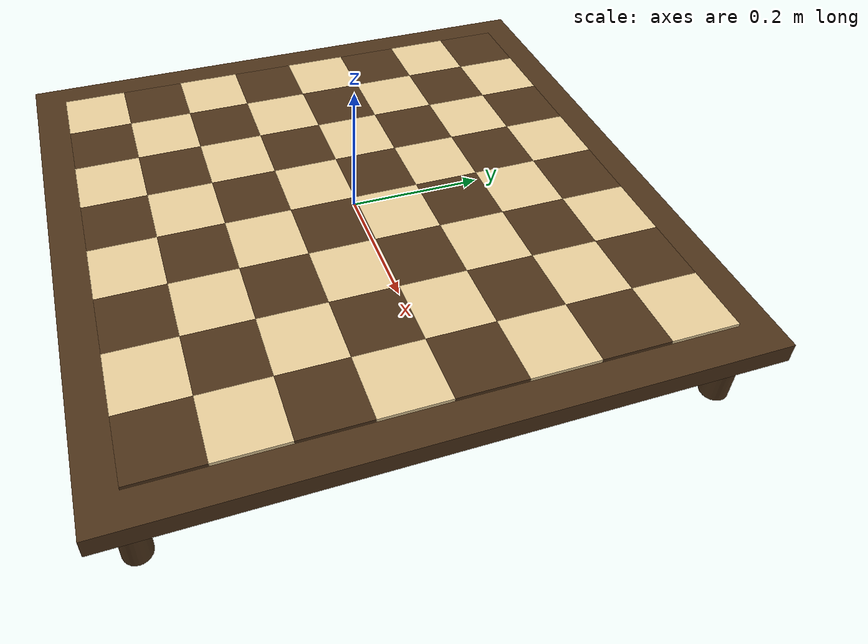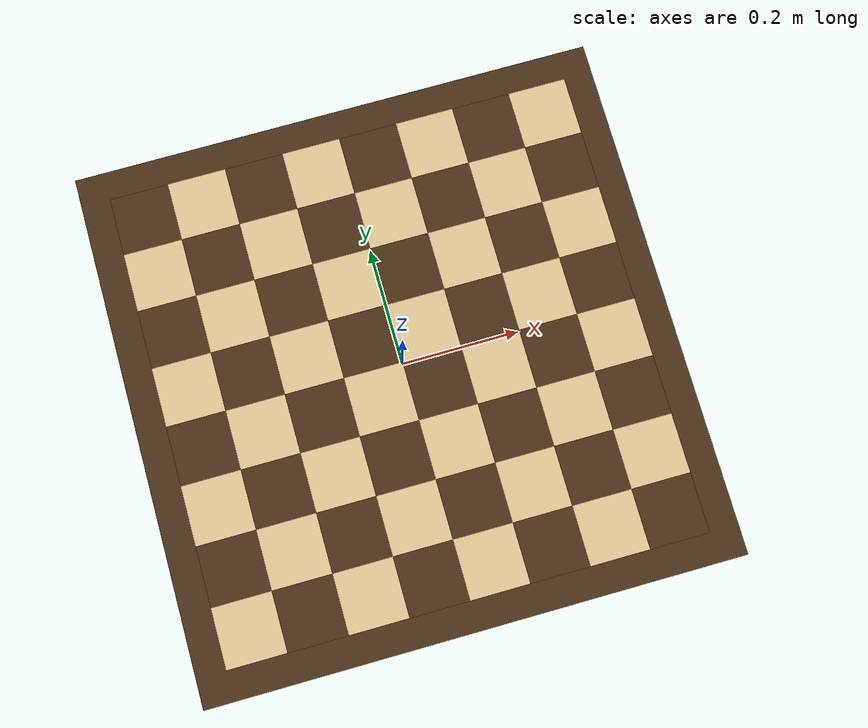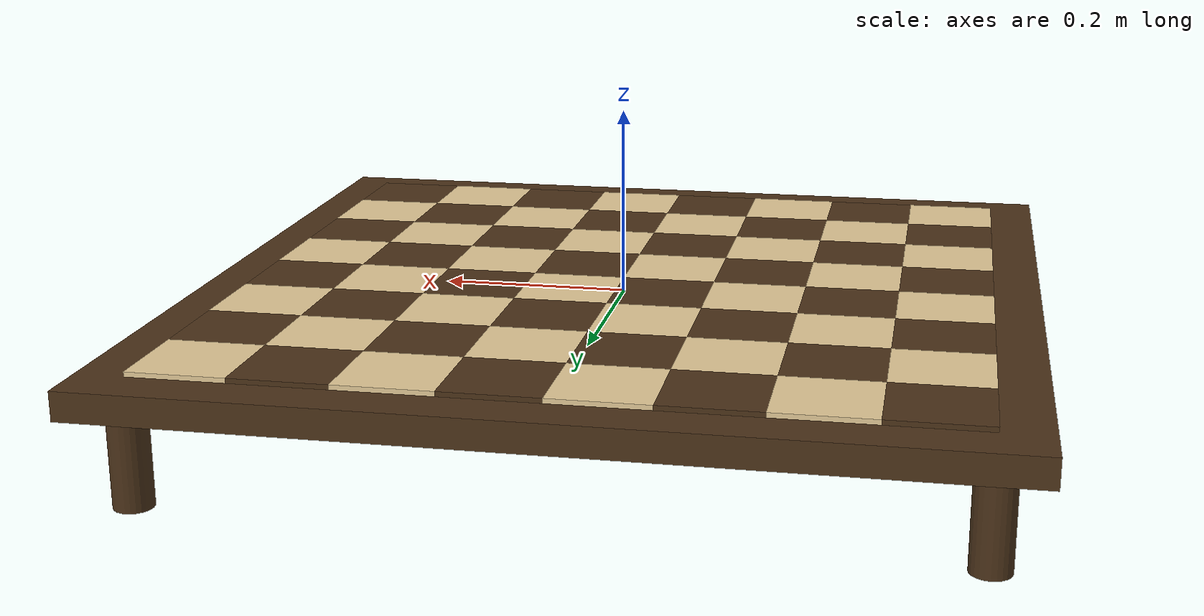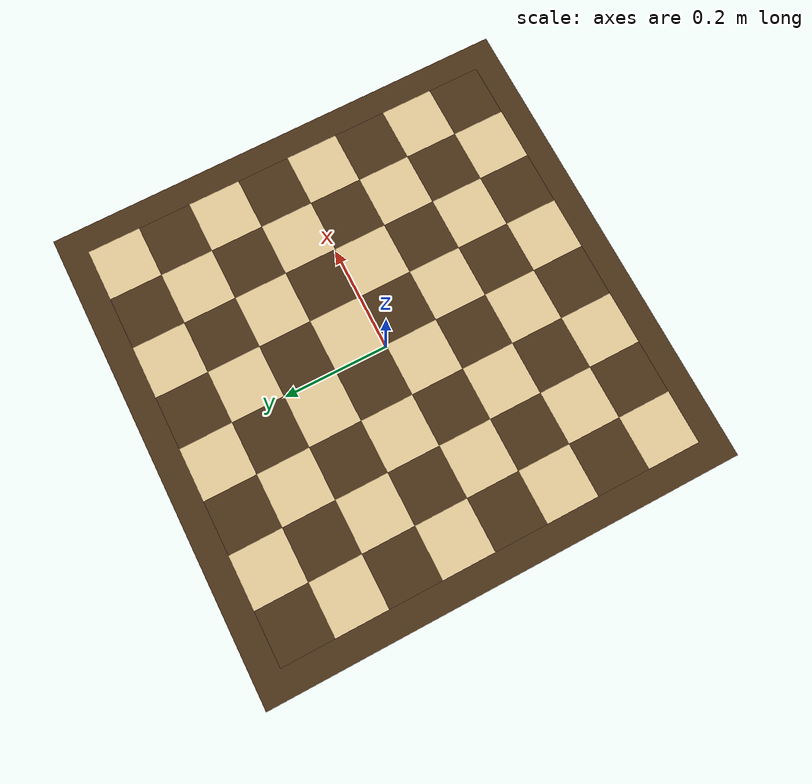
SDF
<?xml version="1.0"?>
<sdf version="1.9">
  <model name="chessboard">
    <!-- Base plate (underneath the squares) -->
    <link name="board_base">
      <visual name="base_visual">
        <geometry>
          <box>
            <size>0.8 0.8 0.01</size>
          </box>
        </geometry>
        <material>
          <diffuse>0.4 0.3 0.2 1.0</diffuse>  <!-- Dark wood base -->
        </material>
      </visual>
      <collision name="board_collision">
        <geometry>
          <box>
            <size>0.8 0.8 0.01</size>
          </box>
        </geometry>
      </collision>
    </link>

    <!-- Individual chess squares - creating the checkerboard pattern -->
    <!-- Row 1 -->
    <link name="square_a1"><visual name="square_a1_visual"><geometry><box><size>0.1 0.1 0.01</size></box></geometry><material><diffuse>0.9 0.8 0.6 1.0</diffuse></material></visual><pose>-0.35 -0.35 0.01 0 0 0</pose></link>
    <link name="square_b1"><visual name="square_b1_visual"><geometry><box><size>0.1 0.1 0.01</size></box></geometry><material><diffuse>0.3 0.2 0.1 1.0</diffuse></material></visual><pose>-0.25 -0.35 0.01 0 0 0</pose></link>
    <link name="square_c1"><visual name="square_c1_visual"><geometry><box><size>0.1 0.1 0.01</size></box></geometry><material><diffuse>0.9 0.8 0.6 1.0</diffuse></material></visual><pose>-0.15 -0.35 0.01 0 0 0</pose></link>
    <link name="square_d1"><visual name="square_d1_visual"><geometry><box><size>0.1 0.1 0.01</size></box></geometry><material><diffuse>0.3 0.2 0.1 1.0</diffuse></material></visual><pose>-0.05 -0.35 0.01 0 0 0</pose></link>
    <link name="square_e1"><visual name="square_e1_visual"><geometry><box><size>0.1 0.1 0.01</size></box></geometry><material><diffuse>0.9 0.8 0.6 1.0</diffuse></material></visual><pose>0.05 -0.35 0.01 0 0 0</pose></link>
    <link name="square_f1"><visual name="square_f1_visual"><geometry><box><size>0.1 0.1 0.01</size></box></geometry><material><diffuse>0.3 0.2 0.1 1.0</diffuse></material></visual><pose>0.15 -0.35 0.01 0 0 0</pose></link>
    <link name="square_g1"><visual name="square_g1_visual"><geometry><box><size>0.1 0.1 0.01</size></box></geometry><material><diffuse>0.9 0.8 0.6 1.0</diffuse></material></visual><pose>0.25 -0.35 0.01 0 0 0</pose></link>
    <link name="square_h1"><visual name="square_h1_visual"><geometry><box><size>0.1 0.1 0.01</size></box></geometry><material><diffuse>0.3 0.2 0.1 1.0</diffuse></material></visual><pose>0.35 -0.35 0.01 0 0 0</pose></link>

    <!-- Row 2 -->
    <link name="square_a2"><visual name="square_a2_visual"><geometry><box><size>0.1 0.1 0.01</size></box></geometry><material><diffuse>0.3 0.2 0.1 1.0</diffuse></material></visual><pose>-0.35 -0.25 0.01 0 0 0</pose></link>
    <link name="square_b2"><visual name="square_b2_visual"><geometry><box><size>0.1 0.1 0.01</size></box></geometry><material><diffuse>0.9 0.8 0.6 1.0</diffuse></material></visual><pose>-0.25 -0.25 0.01 0 0 0</pose></link>
    <link name="square_c2"><visual name="square_c2_visual"><geometry><box><size>0.1 0.1 0.01</size></box></geometry><material><diffuse>0.3 0.2 0.1 1.0</diffuse></material></visual><pose>-0.15 -0.25 0.01 0 0 0</pose></link>
    <link name="square_d2"><visual name="square_d2_visual"><geometry><box><size>0.1 0.1 0.01</size></box></geometry><material><diffuse>0.9 0.8 0.6 1.0</diffuse></material></visual><pose>-0.05 -0.25 0.01 0 0 0</pose></link>
    <link name="square_e2"><visual name="square_e2_visual"><geometry><box><size>0.1 0.1 0.01</size></box></geometry><material><diffuse>0.3 0.2 0.1 1.0</diffuse></material></visual><pose>0.05 -0.25 0.01 0 0 0</pose></link>
    <link name="square_f2"><visual name="square_f2_visual"><geometry><box><size>0.1 0.1 0.01</size></box></geometry><material><diffuse>0.9 0.8 0.6 1.0</diffuse></material></visual><pose>0.15 -0.25 0.01 0 0 0</pose></link>
    <link name="square_g2"><visual name="square_g2_visual"><geometry><box><size>0.1 0.1 0.01</size></box></geometry><material><diffuse>0.3 0.2 0.1 1.0</diffuse></material></visual><pose>0.25 -0.25 0.01 0 0 0</pose></link>
    <link name="square_h2"><visual name="square_h2_visual"><geometry><box><size>0.1 0.1 0.01</size></box></geometry><material><diffuse>0.9 0.8 0.6 1.0</diffuse></material></visual><pose>0.35 -0.25 0.01 0 0 0</pose></link>

    <!-- Row 3 -->
    <link name="square_a3"><visual name="square_a3_visual"><geometry><box><size>0.1 0.1 0.01</size></box></geometry><material><diffuse>0.9 0.8 0.6 1.0</diffuse></material></visual><pose>-0.35 -0.15 0.01 0 0 0</pose></link>
    <link name="square_b3"><visual name="square_b3_visual"><geometry><box><size>0.1 0.1 0.01</size></box></geometry><material><diffuse>0.3 0.2 0.1 1.0</diffuse></material></visual><pose>-0.25 -0.15 0.01 0 0 0</pose></link>
    <link name="square_c3"><visual name="square_c3_visual"><geometry><box><size>0.1 0.1 0.01</size></box></geometry><material><diffuse>0.9 0.8 0.6 1.0</diffuse></material></visual><pose>-0.15 -0.15 0.01 0 0 0</pose></link>
    <link name="square_d3"><visual name="square_d3_visual"><geometry><box><size>0.1 0.1 0.01</size></box></geometry><material><diffuse>0.3 0.2 0.1 1.0</diffuse></material></visual><pose>-0.05 -0.15 0.01 0 0 0</pose></link>
    <link name="square_e3"><visual name="square_e3_visual"><geometry><box><size>0.1 0.1 0.01</size></box></geometry><material><diffuse>0.9 0.8 0.6 1.0</diffuse></material></visual><pose>0.05 -0.15 0.01 0 0 0</pose></link>
    <link name="square_f3"><visual name="square_f3_visual"><geometry><box><size>0.1 0.1 0.01</size></box></geometry><material><diffuse>0.3 0.2 0.1 1.0</diffuse></material></visual><pose>0.15 -0.15 0.01 0 0 0</pose></link>
    <link name="square_g3"><visual name="square_g3_visual"><geometry><box><size>0.1 0.1 0.01</size></box></geometry><material><diffuse>0.9 0.8 0.6 1.0</diffuse></material></visual><pose>0.25 -0.15 0.01 0 0 0</pose></link>
    <link name="square_h3"><visual name="square_h3_visual"><geometry><box><size>0.1 0.1 0.01</size></box></geometry><material><diffuse>0.3 0.2 0.1 1.0</diffuse></material></visual><pose>0.35 -0.15 0.01 0 0 0</pose></link>

    <!-- Continue this pattern for all 8 rows... -->
    <!-- Row 4 -->
    <link name="square_a4"><visual name="square_a4_visual"><geometry><box><size>0.1 0.1 0.01</size></box></geometry><material><diffuse>0.3 0.2 0.1 1.0</diffuse></material></visual><pose>-0.35 -0.05 0.01 0 0 0</pose></link>
    <link name="square_b4"><visual name="square_b4_visual"><geometry><box><size>0.1 0.1 0.01</size></box></geometry><material><diffuse>0.9 0.8 0.6 1.0</diffuse></material></visual><pose>-0.25 -0.05 0.01 0 0 0</pose></link>
    <link name="square_c4"><visual name="square_c4_visual"><geometry><box><size>0.1 0.1 0.01</size></box></geometry><material><diffuse>0.3 0.2 0.1 1.0</diffuse></material></visual><pose>-0.15 -0.05 0.01 0 0 0</pose></link>
    <link name="square_d4"><visual name="square_d4_visual"><geometry><box><size>0.1 0.1 0.01</size></box></geometry><material><diffuse>0.9 0.8 0.6 1.0</diffuse></material></visual><pose>-0.05 -0.05 0.01 0 0 0</pose></link>
    <link name="square_e4"><visual name="square_e4_visual"><geometry><box><size>0.1 0.1 0.01</size></box></geometry><material><diffuse>0.3 0.2 0.1 1.0</diffuse></material></visual><pose>0.05 -0.05 0.01 0 0 0</pose></link>
    <link name="square_f4"><visual name="square_f4_visual"><geometry><box><size>0.1 0.1 0.01</size></box></geometry><material><diffuse>0.9 0.8 0.6 1.0</diffuse></material></visual><pose>0.15 -0.05 0.01 0 0 0</pose></link>
    <link name="square_g4"><visual name="square_g4_visual"><geometry><box><size>0.1 0.1 0.01</size></box></geometry><material><diffuse>0.3 0.2 0.1 1.0</diffuse></material></visual><pose>0.25 -0.05 0.01 0 0 0</pose></link>
    <link name="square_h4"><visual name="square_h4_visual"><geometry><box><size>0.1 0.1 0.01</size></box></geometry><material><diffuse>0.9 0.8 0.6 1.0</diffuse></material></visual><pose>0.35 -0.05 0.01 0 0 0</pose></link>

    <!-- Row 5 -->
    <link name="square_a5"><visual name="square_a5_visual"><geometry><box><size>0.1 0.1 0.01</size></box></geometry><material><diffuse>0.9 0.8 0.6 1.0</diffuse></material></visual><pose>-0.35 0.05 0.01 0 0 0</pose></link>
    <link name="square_b5"><visual name="square_b5_visual"><geometry><box><size>0.1 0.1 0.01</size></box></geometry><material><diffuse>0.3 0.2 0.1 1.0</diffuse></material></visual><pose>-0.25 0.05 0.01 0 0 0</pose></link>
    <link name="square_c5"><visual name="square_c5_visual"><geometry><box><size>0.1 0.1 0.01</size></box></geometry><material><diffuse>0.9 0.8 0.6 1.0</diffuse></material></visual><pose>-0.15 0.05 0.01 0 0 0</pose></link>
    <link name="square_d5"><visual name="square_d5_visual"><geometry><box><size>0.1 0.1 0.01</size></box></geometry><material><diffuse>0.3 0.2 0.1 1.0</diffuse></material></visual><pose>-0.05 0.05 0.01 0 0 0</pose></link>
    <link name="square_e5"><visual name="square_e5_visual"><geometry><box><size>0.1 0.1 0.01</size></box></geometry><material><diffuse>0.9 0.8 0.6 1.0</diffuse></material></visual><pose>0.05 0.05 0.01 0 0 0</pose></link>
    <link name="square_f5"><visual name="square_f5_visual"><geometry><box><size>0.1 0.1 0.01</size></box></geometry><material><diffuse>0.3 0.2 0.1 1.0</diffuse></material></visual><pose>0.15 0.05 0.01 0 0 0</pose></link>
    <link name="square_g5"><visual name="square_g5_visual"><geometry><box><size>0.1 0.1 0.01</size></box></geometry><material><diffuse>0.9 0.8 0.6 1.0</diffuse></material></visual><pose>0.25 0.05 0.01 0 0 0</pose></link>
    <link name="square_h5"><visual name="square_h5_visual"><geometry><box><size>0.1 0.1 0.01</size></box></geometry><material><diffuse>0.3 0.2 0.1 1.0</diffuse></material></visual><pose>0.35 0.05 0.01 0 0 0</pose></link>

    <!-- Row 6 -->
    <link name="square_a6"><visual name="square_a6_visual"><geometry><box><size>0.1 0.1 0.01</size></box></geometry><material><diffuse>0.3 0.2 0.1 1.</diffuse></material></visual><pose>-0.35 0.15 0.01 0 0 0</pose></link>
    <link name="square_b6"><visual name="square_b6_visual"><geometry><box><size>0.1 0.1 0.01</size></box></geometry><material><diffuse>0.9 0.8 0.6 1.0</diffuse></material></visual><pose>-0.25 0.15 0.01 0 0 0</pose></link>
    <link name="square_c6"><visual name="square_c6_visual"><geometry><box><size>0.1 0.1 0.01</size></box></geometry><material><diffuse>0.3 0.2 0.1 1.</diffuse></material></visual><pose>-0.15 0.15 0.01 0 0 0</pose></link>
    <link name="square_d6"><visual name="square_d6_visual"><geometry><box><size>0.1 0.1 0.01</size></box></geometry><material><diffuse>0.9 0.8 0.6 1.0</diffuse></material></visual><pose>-0.05 0.15 0.01 0 0 0</pose></link>
    <link name="square_e6"><visual name="square_e6_visual"><geometry><box><size>0.1 0.1 0.01</size></box></geometry><material><diffuse>0.3 0.2 0.1 1.</diffuse></material></visual><pose>0.05 0.15 0.01 0 0 0</pose></link>
    <link name="square_f6"><visual name="square_f6_visual"><geometry><box><size>0.1 0.1 0.01</size></box></geometry><material><diffuse>0.9 0.8 0.6 1.0</diffuse></material></visual><pose>0.15 0.15 0.01 0 0 0</pose></link>
    <link name="square_g6"><visual name="square_g6_visual"><geometry><box><size>0.1 0.1 0.01</size></box></geometry><material><diffuse>0.3 0.2 0.1 1.</diffuse></material></visual><pose>0.25 0.15 0.01 0 0 0</pose></link>
    <link name="square_h6"><visual name="square_h6_visual"><geometry><box><size>0.1 0.1 0.01</size></box></geometry><material><diffuse>0.9 0.8 0.6 1.0</diffuse></material></visual><pose>0.35 0.15 0.01 0 0 0</pose></link>

    <!-- Row 7 -->
    <link name="square_a7"><visual name="square_a7_visual"><geometry><box><size>0.1 0.1 0.01</size></box></geometry><material><diffuse>0.9 0.8 0.6 1.0</diffuse></material></visual><pose>-0.35 0.25 0.01 0 0 0</pose></link>
    <link name="square_b7"><visual name="square_b7_visual"><geometry><box><size>0.1 0.1 0.01</size></box></geometry><material><diffuse>0.3 0.2 0.1 1.0</diffuse></material></visual><pose>-0.25 0.25 0.01 0 0 0</pose></link>
    <link name="square_c7"><visual name="square_c7_visual"><geometry><box><size>0.1 0.1 0.01</size></box></geometry><material><diffuse>0.9 0.8 0.6 1.0</diffuse></material></visual><pose>-0.15 0.25 0.01 0 0 0</pose></link>
    <link name="square_d7"><visual name="square_d7_visual"><geometry><box><size>0.1 0.1 0.01</size></box></geometry><material><diffuse>0.3 0.2 0.1 1.0</diffuse></material></visual><pose>-0.05 0.25 0.01 0 0 0</pose></link>
    <link name="square_e7"><visual name="square_e7_visual"><geometry><box><size>0.1 0.1 0.01</size></box></geometry><material><diffuse>0.9 0.8 0.6 1.0</diffuse></material></visual><pose>0.05 0.25 0.01 0 0 0</pose></link>
    <link name="square_f7"><visual name="square_f7_visual"><geometry><box><size>0.1 0.1 0.01</size></box></geometry><material><diffuse>0.3 0.2 0.1 1.0</diffuse></material></visual><pose>0.15 0.25 0.01 0 0 0</pose></link>
    <link name="square_g7"><visual name="square_g7_visual"><geometry><box><size>0.1 0.1 0.01</size></box></geometry><material><diffuse>0.9 0.8 0.6 1.0</diffuse></material></visual><pose>0.25 0.25 0.01 0 0 0</pose></link>
    <link name="square_h7"><visual name="square_h7_visual"><geometry><box><size>0.1 0.1 0.01</size></box></geometry><material><diffuse>0.3 0.2 0.1 1.0</diffuse></material></visual><pose>0.35 0.25 0.01 0 0 0</pose></link>

    <!-- Row 8 -->
    <link name="square_a8"><visual name="square_a8_visual"><geometry><box><size>0.1 0.1 0.01</size></box></geometry><material><diffuse>0.3 0.2 0.1 1.0</diffuse></material></visual><pose>-0.35 0.35 0.01 0 0 0</pose></link>
    <link name="square_b8"><visual name="square_b8_visual"><geometry><box><size>0.1 0.1 0.01</size></box></geometry><material><diffuse>0.9 0.8 0.6 1.0</diffuse></material></visual><pose>-0.25 0.35 0.01 0 0 0</pose></link>
    <link name="square_c8"><visual name="square_c8_visual"><geometry><box><size>0.1 0.1 0.01</size></box></geometry><material><diffuse>0.3 0.2 0.1 1.0</diffuse></material></visual><pose>-0.15 0.35 0.01 0 0 0</pose></link>
    <link name="square_d8"><visual name="square_d8_visual"><geometry><box><size>0.1 0.1 0.01</size></box></geometry><material><diffuse>0.9 0.8 0.6 1.0</diffuse></material></visual><pose>-0.05 0.35 0.01 0 0 0</pose></link>
    <link name="square_e8"><visual name="square_e8_visual"><geometry><box><size>0.1 0.1 0.01</size></box></geometry><material><diffuse>0.3 0.2 0.1 1.0</diffuse></material></visual><pose>0.05 0.35 0.01 0 0 0</pose></link>
    <link name="square_f8"><visual name="square_f8_visual"><geometry><box><size>0.1 0.1 0.01</size></box></geometry><material><diffuse>0.9 0.8 0.6 1.0</diffuse></material></visual><pose>0.15 0.35 0.01 0 0 0</pose></link>
    <link name="square_g8"><visual name="square_g8_visual"><geometry><box><size>0.1 0.1 0.01</size></box></geometry><material><diffuse>0.3 0.2 0.1 1.0</diffuse></material></visual><pose>0.25 0.35 0.01 0 0 0</pose></link>
    <link name="square_h8"><visual name="square_h8_visual"><geometry><box><size>0.1 0.1 0.01</size></box></geometry><material><diffuse>0.9 0.8 0.6 1.0</diffuse></material></visual><pose>0.35 0.35 0.01 0 0 0</pose></link>

    <!-- Wooden frame around the board -->
    <link name="board_frame">
      <visual name="frame_visual">
        <geometry>
          <box>
            <size>0.9 0.9 0.03</size>
          </box>
        </geometry>
        <material>
          <diffuse>0.3 0.2 0.1 1.0</diffuse>  <!-- Dark wood color -->
        </material>
      </visual>
      <pose>0 0 -0.005 0 0 0</pose>  <!-- Slightly below the board surface -->
    </link>

    <!-- Legs for the chessboard -->
    <link name="leg_1">
      <visual name="leg_1_visual">
        <geometry>
          <cylinder>
            <radius>0.02</radius>
            <length>0.1</length>
          </cylinder>
        </geometry>
        <material>
          <diffuse>0.3 0.2 0.1 1.0</diffuse>
        </material>
      </visual>
      <pose>-0.4 -0.4 -0.07 0 0 0</pose>
    </link>
    <link name="leg_2">
      <visual name="leg_2_visual">
        <geometry>
          <cylinder>
            <radius>0.02</radius>
            <length>0.1</length>
          </cylinder>
        </geometry>
        <material>
          <diffuse>0.3 0.2 0.1 1.0</diffuse>
        </material>
      </visual>
      <pose>0.4 -0.4 -0.07 0 0 0</pose>
    </link>
    <link name="leg_3">
      <visual name="leg_3_visual">
        <geometry>
          <cylinder>
            <radius>0.02</radius>
            <length>0.1</length>
          </cylinder>
        </geometry>
        <material>
          <diffuse>0.3 0.2 0.1 1.0</diffuse>
        </material>
      </visual>
      <pose>-0.4 0.4 -0.07 0 0 0</pose>
    </link>
    <link name="leg_4">
      <visual name="leg_4_visual">
        <geometry>
          <cylinder>
            <radius>0.02</radius>
            <length>0.1</length>
          </cylinder>
        </geometry>
        <material>
          <diffuse>0.3 0.2 0.1 1.0</diffuse>
        </material>
      </visual>
      <pose>0.4 0.4 -0.07 0 0 0</pose>
    </link>
  </model>
</sdf>
